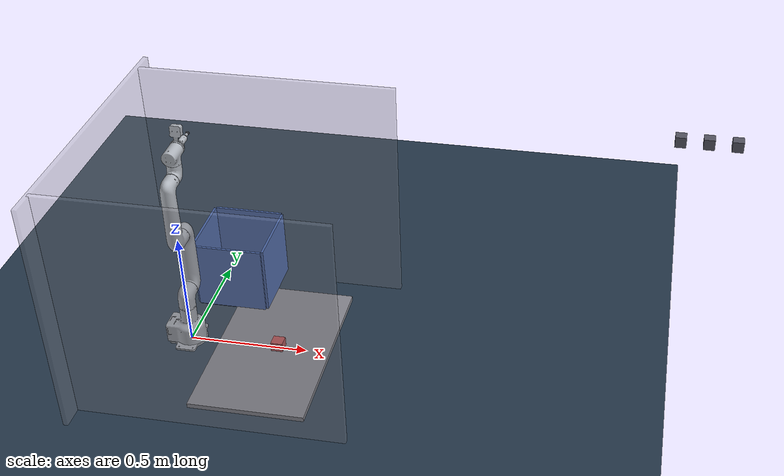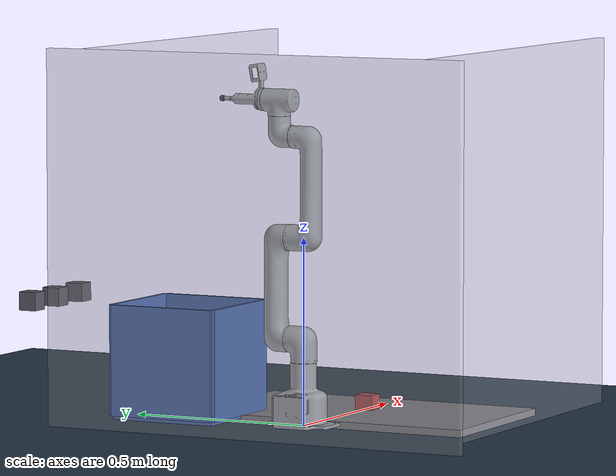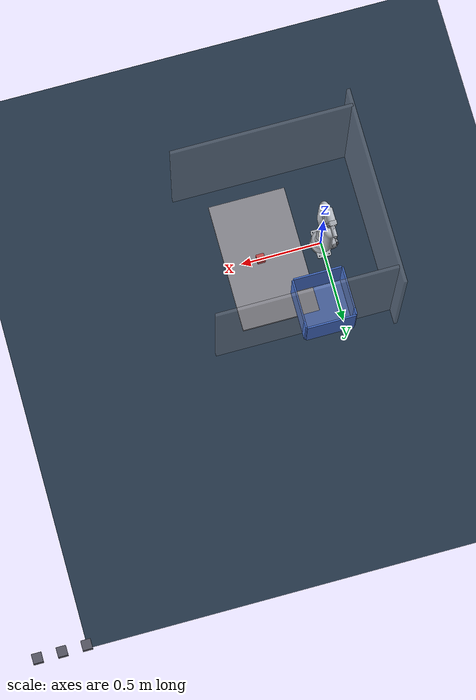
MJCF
<mujoco model="mycobot_diverse_v2">
  <compiler angle="radian" meshdir="meshes" autolimits="true" />
  <option timestep="0.002" gravity="0 0 -9.81" />
  <visual>
    <global offwidth="1280" offheight="960" />
    <headlight diffuse="0.6 0.6 0.6" ambient="0.4 0.4 0.4" />
    <map znear="0.01" />
  </visual>
  <asset>
    <texture name="grid" type="2d" builtin="checker" rgb1=".2 .3 .4" rgb2=".1 .15 .2" width="300" height="300" />
    <material name="grid" texture="grid" texrepeat="8 8" reflectance=".1" />
    <material name="metal" rgba="0.7 0.72 0.75 1" />
    <material name="box" rgba="0.27 0.43 0.78 1" />
    <material name="table" rgba="0.55 0.55 0.58 1" />
    <material name="o0" rgba="0.8 0.3 0.3 1" />
    <mesh name="base" file="base.stl" />
    <mesh name="link1" file="link1.stl" />
    <mesh name="link2" file="link2.stl" />
    <mesh name="link3" file="link3.stl" />
    <mesh name="link4" file="link4.stl" />
    <mesh name="link5" file="link5.stl" />
    <mesh name="link6" file="link6.stl" />
    <mesh name="camera_mount" file="camera_mount.stl" />
    <mesh name="suction_cup" file="suction_cup.stl" />
    <mesh name="hex_stub" vertex="0.001000 0.000000 0.001000 0.000500 0.000866 0.001000 -0.000500 0.000866 0.001000 -0.001000 0.000000 0.001000 -0.000500 -0.000866 0.001000 0.000500 -0.000866 0.001000 0.001000 0.000000 -0.001000 0.000500 0.000866 -0.001000 -0.000500 0.000866 -0.001000 -0.001000 0.000000 -0.001000 -0.000500 -0.000866 -0.001000 0.000500 -0.000866 -0.001000" />
    <mesh name="hex_r0_h0" vertex="0.018000 0.000000 0.012000 0.009000 0.015588 0.012000 -0.009000 0.015588 0.012000 -0.018000 0.000000 0.012000 -0.009000 -0.015588 0.012000 0.009000 -0.015588 0.012000 0.018000 0.000000 -0.012000 0.009000 0.015588 -0.012000 -0.009000 0.015588 -0.012000 -0.018000 0.000000 -0.012000 -0.009000 -0.015588 -0.012000 0.009000 -0.015588 -0.012000" />
    <mesh name="hex_r0_h1" vertex="0.018000 0.000000 0.021500 0.009000 0.015588 0.021500 -0.009000 0.015588 0.021500 -0.018000 0.000000 0.021500 -0.009000 -0.015588 0.021500 0.009000 -0.015588 0.021500 0.018000 0.000000 -0.021500 0.009000 0.015588 -0.021500 -0.009000 0.015588 -0.021500 -0.018000 0.000000 -0.021500 -0.009000 -0.015588 -0.021500 0.009000 -0.015588 -0.021500" />
    <mesh name="hex_r0_h2" vertex="0.018000 0.000000 0.031000 0.009000 0.015588 0.031000 -0.009000 0.015588 0.031000 -0.018000 0.000000 0.031000 -0.009000 -0.015588 0.031000 0.009000 -0.015588 0.031000 0.018000 0.000000 -0.031000 0.009000 0.015588 -0.031000 -0.009000 0.015588 -0.031000 -0.018000 0.000000 -0.031000 -0.009000 -0.015588 -0.031000 0.009000 -0.015588 -0.031000" />
    <mesh name="hex_r0_h3" vertex="0.018000 0.000000 0.040500 0.009000 0.015588 0.040500 -0.009000 0.015588 0.040500 -0.018000 0.000000 0.040500 -0.009000 -0.015588 0.040500 0.009000 -0.015588 0.040500 0.018000 0.000000 -0.040500 0.009000 0.015588 -0.040500 -0.009000 0.015588 -0.040500 -0.018000 0.000000 -0.040500 -0.009000 -0.015588 -0.040500 0.009000 -0.015588 -0.040500" />
    <mesh name="hex_r0_h4" vertex="0.018000 0.000000 0.050000 0.009000 0.015588 0.050000 -0.009000 0.015588 0.050000 -0.018000 0.000000 0.050000 -0.009000 -0.015588 0.050000 0.009000 -0.015588 0.050000 0.018000 0.000000 -0.050000 0.009000 0.015588 -0.050000 -0.009000 0.015588 -0.050000 -0.018000 0.000000 -0.050000 -0.009000 -0.015588 -0.050000 0.009000 -0.015588 -0.050000" />
    <mesh name="hex_r1_h0" vertex="0.023400 0.000000 0.012000 0.011700 0.020265 0.012000 -0.011700 0.020265 0.012000 -0.023400 0.000000 0.012000 -0.011700 -0.020265 0.012000 0.011700 -0.020265 0.012000 0.023400 0.000000 -0.012000 0.011700 0.020265 -0.012000 -0.011700 0.020265 -0.012000 -0.023400 0.000000 -0.012000 -0.011700 -0.020265 -0.012000 0.011700 -0.020265 -0.012000" />
    <mesh name="hex_r1_h1" vertex="0.023400 0.000000 0.021500 0.011700 0.020265 0.021500 -0.011700 0.020265 0.021500 -0.023400 0.000000 0.021500 -0.011700 -0.020265 0.021500 0.011700 -0.020265 0.021500 0.023400 0.000000 -0.021500 0.011700 0.020265 -0.021500 -0.011700 0.020265 -0.021500 -0.023400 0.000000 -0.021500 -0.011700 -0.020265 -0.021500 0.011700 -0.020265 -0.021500" />
    <mesh name="hex_r1_h2" vertex="0.023400 0.000000 0.031000 0.011700 0.020265 0.031000 -0.011700 0.020265 0.031000 -0.023400 0.000000 0.031000 -0.011700 -0.020265 0.031000 0.011700 -0.020265 0.031000 0.023400 0.000000 -0.031000 0.011700 0.020265 -0.031000 -0.011700 0.020265 -0.031000 -0.023400 0.000000 -0.031000 -0.011700 -0.020265 -0.031000 0.011700 -0.020265 -0.031000" />
    <mesh name="hex_r1_h3" vertex="0.023400 0.000000 0.040500 0.011700 0.020265 0.040500 -0.011700 0.020265 0.040500 -0.023400 0.000000 0.040500 -0.011700 -0.020265 0.040500 0.011700 -0.020265 0.040500 0.023400 0.000000 -0.040500 0.011700 0.020265 -0.040500 -0.011700 0.020265 -0.040500 -0.023400 0.000000 -0.040500 -0.011700 -0.020265 -0.040500 0.011700 -0.020265 -0.040500" />
    <mesh name="hex_r1_h4" vertex="0.023400 0.000000 0.050000 0.011700 0.020265 0.050000 -0.011700 0.020265 0.050000 -0.023400 0.000000 0.050000 -0.011700 -0.020265 0.050000 0.011700 -0.020265 0.050000 0.023400 0.000000 -0.050000 0.011700 0.020265 -0.050000 -0.011700 0.020265 -0.050000 -0.023400 0.000000 -0.050000 -0.011700 -0.020265 -0.050000 0.011700 -0.020265 -0.050000" />
    <mesh name="hex_r2_h0" vertex="0.028800 0.000000 0.012000 0.014400 0.024942 0.012000 -0.014400 0.024942 0.012000 -0.028800 0.000000 0.012000 -0.014400 -0.024942 0.012000 0.014400 -0.024942 0.012000 0.028800 0.000000 -0.012000 0.014400 0.024942 -0.012000 -0.014400 0.024942 -0.012000 -0.028800 0.000000 -0.012000 -0.014400 -0.024942 -0.012000 0.014400 -0.024942 -0.012000" />
    <mesh name="hex_r2_h1" vertex="0.028800 0.000000 0.021500 0.014400 0.024942 0.021500 -0.014400 0.024942 0.021500 -0.028800 0.000000 0.021500 -0.014400 -0.024942 0.021500 0.014400 -0.024942 0.021500 0.028800 0.000000 -0.021500 0.014400 0.024942 -0.021500 -0.014400 0.024942 -0.021500 -0.028800 0.000000 -0.021500 -0.014400 -0.024942 -0.021500 0.014400 -0.024942 -0.021500" />
    <mesh name="hex_r2_h2" vertex="0.028800 0.000000 0.031000 0.014400 0.024942 0.031000 -0.014400 0.024942 0.031000 -0.028800 0.000000 0.031000 -0.014400 -0.024942 0.031000 0.014400 -0.024942 0.031000 0.028800 0.000000 -0.031000 0.014400 0.024942 -0.031000 -0.014400 0.024942 -0.031000 -0.028800 0.000000 -0.031000 -0.014400 -0.024942 -0.031000 0.014400 -0.024942 -0.031000" />
    <mesh name="hex_r2_h3" vertex="0.028800 0.000000 0.040500 0.014400 0.024942 0.040500 -0.014400 0.024942 0.040500 -0.028800 0.000000 0.040500 -0.014400 -0.024942 0.040500 0.014400 -0.024942 0.040500 0.028800 0.000000 -0.040500 0.014400 0.024942 -0.040500 -0.014400 0.024942 -0.040500 -0.028800 0.000000 -0.040500 -0.014400 -0.024942 -0.040500 0.014400 -0.024942 -0.040500" />
    <mesh name="hex_r2_h4" vertex="0.028800 0.000000 0.050000 0.014400 0.024942 0.050000 -0.014400 0.024942 0.050000 -0.028800 0.000000 0.050000 -0.014400 -0.024942 0.050000 0.014400 -0.024942 0.050000 0.028800 0.000000 -0.050000 0.014400 0.024942 -0.050000 -0.014400 0.024942 -0.050000 -0.028800 0.000000 -0.050000 -0.014400 -0.024942 -0.050000 0.014400 -0.024942 -0.050000" />
    <mesh name="hex_r3_h0" vertex="0.034200 0.000000 0.012000 0.017100 0.029618 0.012000 -0.017100 0.029618 0.012000 -0.034200 0.000000 0.012000 -0.017100 -0.029618 0.012000 0.017100 -0.029618 0.012000 0.034200 0.000000 -0.012000 0.017100 0.029618 -0.012000 -0.017100 0.029618 -0.012000 -0.034200 0.000000 -0.012000 -0.017100 -0.029618 -0.012000 0.017100 -0.029618 -0.012000" />
    <mesh name="hex_r3_h1" vertex="0.034200 0.000000 0.021500 0.017100 0.029618 0.021500 -0.017100 0.029618 0.021500 -0.034200 0.000000 0.021500 -0.017100 -0.029618 0.021500 0.017100 -0.029618 0.021500 0.034200 0.000000 -0.021500 0.017100 0.029618 -0.021500 -0.017100 0.029618 -0.021500 -0.034200 0.000000 -0.021500 -0.017100 -0.029618 -0.021500 0.017100 -0.029618 -0.021500" />
    <mesh name="hex_r3_h2" vertex="0.034200 0.000000 0.031000 0.017100 0.029618 0.031000 -0.017100 0.029618 0.031000 -0.034200 0.000000 0.031000 -0.017100 -0.029618 0.031000 0.017100 -0.029618 0.031000 0.034200 0.000000 -0.031000 0.017100 0.029618 -0.031000 -0.017100 0.029618 -0.031000 -0.034200 0.000000 -0.031000 -0.017100 -0.029618 -0.031000 0.017100 -0.029618 -0.031000" />
    <mesh name="hex_r3_h3" vertex="0.034200 0.000000 0.040500 0.017100 0.029618 0.040500 -0.017100 0.029618 0.040500 -0.034200 0.000000 0.040500 -0.017100 -0.029618 0.040500 0.017100 -0.029618 0.040500 0.034200 0.000000 -0.040500 0.017100 0.029618 -0.040500 -0.017100 0.029618 -0.040500 -0.034200 0.000000 -0.040500 -0.017100 -0.029618 -0.040500 0.017100 -0.029618 -0.040500" />
    <mesh name="hex_r3_h4" vertex="0.034200 0.000000 0.050000 0.017100 0.029618 0.050000 -0.017100 0.029618 0.050000 -0.034200 0.000000 0.050000 -0.017100 -0.029618 0.050000 0.017100 -0.029618 0.050000 0.034200 0.000000 -0.050000 0.017100 0.029618 -0.050000 -0.017100 0.029618 -0.050000 -0.034200 0.000000 -0.050000 -0.017100 -0.029618 -0.050000 0.017100 -0.029618 -0.050000" />
    <mesh name="hex_r4_h0" vertex="0.039600 0.000000 0.012000 0.019800 0.034295 0.012000 -0.019800 0.034295 0.012000 -0.039600 0.000000 0.012000 -0.019800 -0.034295 0.012000 0.019800 -0.034295 0.012000 0.039600 0.000000 -0.012000 0.019800 0.034295 -0.012000 -0.019800 0.034295 -0.012000 -0.039600 0.000000 -0.012000 -0.019800 -0.034295 -0.012000 0.019800 -0.034295 -0.012000" />
    <mesh name="hex_r4_h1" vertex="0.039600 0.000000 0.021500 0.019800 0.034295 0.021500 -0.019800 0.034295 0.021500 -0.039600 0.000000 0.021500 -0.019800 -0.034295 0.021500 0.019800 -0.034295 0.021500 0.039600 0.000000 -0.021500 0.019800 0.034295 -0.021500 -0.019800 0.034295 -0.021500 -0.039600 0.000000 -0.021500 -0.019800 -0.034295 -0.021500 0.019800 -0.034295 -0.021500" />
    <mesh name="hex_r4_h2" vertex="0.039600 0.000000 0.031000 0.019800 0.034295 0.031000 -0.019800 0.034295 0.031000 -0.039600 0.000000 0.031000 -0.019800 -0.034295 0.031000 0.019800 -0.034295 0.031000 0.039600 0.000000 -0.031000 0.019800 0.034295 -0.031000 -0.019800 0.034295 -0.031000 -0.039600 0.000000 -0.031000 -0.019800 -0.034295 -0.031000 0.019800 -0.034295 -0.031000" />
    <mesh name="hex_r4_h3" vertex="0.039600 0.000000 0.040500 0.019800 0.034295 0.040500 -0.019800 0.034295 0.040500 -0.039600 0.000000 0.040500 -0.019800 -0.034295 0.040500 0.019800 -0.034295 0.040500 0.039600 0.000000 -0.040500 0.019800 0.034295 -0.040500 -0.019800 0.034295 -0.040500 -0.039600 0.000000 -0.040500 -0.019800 -0.034295 -0.040500 0.019800 -0.034295 -0.040500" />
    <mesh name="hex_r4_h4" vertex="0.039600 0.000000 0.050000 0.019800 0.034295 0.050000 -0.019800 0.034295 0.050000 -0.039600 0.000000 0.050000 -0.019800 -0.034295 0.050000 0.019800 -0.034295 0.050000 0.039600 0.000000 -0.050000 0.019800 0.034295 -0.050000 -0.019800 0.034295 -0.050000 -0.039600 0.000000 -0.050000 -0.019800 -0.034295 -0.050000 0.019800 -0.034295 -0.050000" />
    <mesh name="hex_r5_h0" vertex="0.045000 0.000000 0.012000 0.022500 0.038971 0.012000 -0.022500 0.038971 0.012000 -0.045000 0.000000 0.012000 -0.022500 -0.038971 0.012000 0.022500 -0.038971 0.012000 0.045000 0.000000 -0.012000 0.022500 0.038971 -0.012000 -0.022500 0.038971 -0.012000 -0.045000 0.000000 -0.012000 -0.022500 -0.038971 -0.012000 0.022500 -0.038971 -0.012000" />
    <mesh name="hex_r5_h1" vertex="0.045000 0.000000 0.021500 0.022500 0.038971 0.021500 -0.022500 0.038971 0.021500 -0.045000 0.000000 0.021500 -0.022500 -0.038971 0.021500 0.022500 -0.038971 0.021500 0.045000 0.000000 -0.021500 0.022500 0.038971 -0.021500 -0.022500 0.038971 -0.021500 -0.045000 0.000000 -0.021500 -0.022500 -0.038971 -0.021500 0.022500 -0.038971 -0.021500" />
    <mesh name="hex_r5_h2" vertex="0.045000 0.000000 0.031000 0.022500 0.038971 0.031000 -0.022500 0.038971 0.031000 -0.045000 0.000000 0.031000 -0.022500 -0.038971 0.031000 0.022500 -0.038971 0.031000 0.045000 0.000000 -0.031000 0.022500 0.038971 -0.031000 -0.022500 0.038971 -0.031000 -0.045000 0.000000 -0.031000 -0.022500 -0.038971 -0.031000 0.022500 -0.038971 -0.031000" />
    <mesh name="hex_r5_h3" vertex="0.045000 0.000000 0.040500 0.022500 0.038971 0.040500 -0.022500 0.038971 0.040500 -0.045000 0.000000 0.040500 -0.022500 -0.038971 0.040500 0.022500 -0.038971 0.040500 0.045000 0.000000 -0.040500 0.022500 0.038971 -0.040500 -0.022500 0.038971 -0.040500 -0.045000 0.000000 -0.040500 -0.022500 -0.038971 -0.040500 0.022500 -0.038971 -0.040500" />
    <mesh name="hex_r5_h4" vertex="0.045000 0.000000 0.050000 0.022500 0.038971 0.050000 -0.022500 0.038971 0.050000 -0.045000 0.000000 0.050000 -0.022500 -0.038971 0.050000 0.022500 -0.038971 0.050000 0.045000 0.000000 -0.050000 0.022500 0.038971 -0.050000 -0.022500 0.038971 -0.050000 -0.045000 0.000000 -0.050000 -0.022500 -0.038971 -0.050000 0.022500 -0.038971 -0.050000" />
    <material name="wall" rgba="0.62 0.62 0.66 0.35" />
  </asset>
  <worldbody>
    <light pos="0.3 0.1 1.5" dir="0 0 -1" diffuse="0.8 0.8 0.8" />
    <geom name="floor" type="plane" size="2 2 0.1" pos="0 0 -0.1200" material="grid" />
    <geom name="table" type="box" pos="0.360000 0.000000 -0.010000" size="0.240000 0.400000 0.010000" material="table" contype="0" conaffinity="0" />
    <geom name="wall_back" type="box" pos="-0.300000 0.000000 0.500000" size="0.010000 0.600000 0.500000" material="wall" contype="0" conaffinity="5" />
    <geom name="wall_ym" type="box" pos="0.250000 -0.500000 0.500000" size="0.550000 0.010000 0.500000" material="wall" contype="0" conaffinity="5" />
    <geom name="wall_yp" type="box" pos="0.250000 0.500000 0.500000" size="0.550000 0.010000 0.500000" material="wall" contype="0" conaffinity="5" />
    <geom name="table_top" type="plane" size="1.5 1.5 0.05" pos="0 0 0" rgba="0 0 0 0" group="3" contype="1" conaffinity="1" />
    <geom name="box_floor" type="box" pos="0.1000 0.4000 -0.0050" size="0.1500 0.1500 0.0050" material="box" />
    <geom name="box_xm" type="box" pos="-0.0550 0.4000 0.1500" size="0.0050 0.1500 0.1500" material="box" />
    <geom name="box_xp" type="box" pos="0.2550 0.4000 0.1500" size="0.0050 0.1500 0.1500" material="box" />
    <geom name="box_ym" type="box" pos="0.1000 0.2450 0.1500" size="0.1500 0.0050 0.1500" material="box" />
    <geom name="box_yp" type="box" pos="0.1000 0.5550 0.1500" size="0.1500 0.0050 0.1500" material="box" />
    <camera name="iso" pos="1.05 -0.55 0.78" xyaxes="0.45 0.89 0 -0.5 0.25 0.83" />
    <camera name="front" pos="0.38 -0.85 0.45" xyaxes="1 0 0 0 0.45 0.89" />
    <camera name="top" pos="0.38 0.0 0.9" xyaxes="1 0 0 0 1 0" />
    <camera name="fixed_d435" pos="0.660 0.000 0.600" xyaxes="0.0000 1.0000 -0.0000 -0.8976 0.0000 0.4409" fovy="42.0" />
    <body name="base_link" pos="0 0 0">
      <body name="base" pos="0.000000 0.000000 0.000000" quat="1.000000 0.000000 0.000000 0.000000">
        <inertial pos="-0.013400 0.000010 0.065840" mass="3.422500" fullinertia="1.129e-02 1.123e-02 9.902e-03 5.521e-08 -1.427e-04 -2.052e-07" />
        <geom type="mesh" mesh="base" material="metal" contype="0" conaffinity="0" />
        <body name="link1" pos="0.000000 0.000000 0.229340" quat="1.000000 0.000000 0.000000 0.000000">
          <joint name="joint1" type="hinge" axis="0.0000 0.0000 1.0000" range="-3.1416 3.1416" damping="1.0" armature="0.15" />
          <inertial pos="0.000000 0.007560 -0.014550" mass="0.543400" fullinertia="5.669e-04 5.118e-04 4.049e-04 -3.760e-12 9.896e-13 -4.414e-05" />
          <geom type="mesh" mesh="link1" material="metal" contype="0" conaffinity="0" />
          <body name="link2" pos="0.000000 0.000000 0.000000" quat="-0.500023 -0.499975 0.500025 -0.499977">
            <joint name="joint2" type="hinge" axis="0.0000 0.0000 -1.0000" range="-3.1416 3.1416" damping="1.0" armature="0.15" />
            <inertial pos="0.134440 0.000020 -0.075330" mass="1.812500" fullinertia="1.229e-03 1.587e-02 1.590e-02 -1.272e-06 -2.471e-08 -9.612e-09" />
            <geom type="mesh" mesh="link2" material="metal" contype="0" conaffinity="0" />
            <body name="link3" pos="0.270000 0.000000 0.000000" quat="1.000000 0.000000 0.000000 0.000000">
              <joint name="joint3" type="hinge" axis="0.0000 0.0000 -1.0000" range="-2.6100 2.6180" damping="1.0" armature="0.15" />
              <inertial pos="0.122480 -0.000230 0.001000" mass="2.265100" fullinertia="2.065e-03 1.967e-02 1.904e-02 -1.733e-06 -3.722e-04 -9.829e-08" />
              <geom type="mesh" mesh="link3" material="metal" contype="0" conaffinity="0" />
              <body name="link4" pos="0.267000 0.000000 -0.074500" quat="0.707105 0.000000 0.000000 0.707108">
                <joint name="joint4" type="hinge" axis="0.0000 0.0000 -1.0000" range="-2.9670 2.9670" damping="1.0" armature="0.15" />
                <inertial pos="0.000000 -0.014910 0.009100" mass="0.344700" fullinertia="2.681e-04 1.882e-04 2.438e-04 -2.279e-08 4.082e-09 -2.695e-05" />
                <geom type="mesh" mesh="link4" material="metal" contype="0" conaffinity="0" />
                <body name="link5" pos="0.000000 -0.095000 0.002000" quat="0.500048 0.500000 -0.500000 0.499952">
                  <joint name="joint5" type="hinge" axis="0.0000 0.0000 1.0000" range="-2.9300 2.9321" damping="1.0" armature="0.15" />
                  <inertial pos="0.000780 0.000000 -0.006540" mass="0.420400" fullinertia="2.502e-04 3.887e-04 3.526e-04 1.986e-12 -2.156e-06 -3.526e-12" />
                  <geom type="mesh" mesh="link5" material="metal" contype="0" conaffinity="0" />
                  <body name="link6" pos="-0.054000 0.000000 0.000000" quat="0.707141 -0.707073 0.000000 0.000000">
                    <joint name="joint6" type="hinge" axis="-1.0000 0.0000 0.0000" range="-3.0300 3.0368" damping="1.0" armature="0.15" />
                    <inertial pos="0.005430 0.000000 0.000000" mass="0.037600" fullinertia="1.680e-05 8.708e-06 8.709e-06 -1.013e-13 8.044e-10 6.140e-13" />
                    <geom type="mesh" mesh="link6" material="metal" contype="0" conaffinity="0" />
                    <body name="camera_mount" pos="-0.003000 -0.003000 0.000000" quat="0.000003 -0.707105 0.000003 0.707108">
                      <inertial pos="0.000000 0.000000 0.000000" mass="0.050000" fullinertia="3.000e-05 3.000e-05 3.000e-05 0.000e+00 0.000e+00 0.000e+00" />
                      <geom type="mesh" mesh="camera_mount" material="metal" contype="0" conaffinity="0" />
                    </body>
                    <body name="suction_cup" pos="0.000000 0.000000 0.000000" quat="0.707105 0.000000 0.707108 0.000000">
                      <inertial pos="0.000000 0.000000 -0.034280" mass="0.153700" fullinertia="1.216e-04 1.216e-04 3.597e-05 2.032e-13 -3.219e-13 3.146e-10" />
                      <geom type="mesh" mesh="suction_cup" material="metal" contype="0" conaffinity="0" />
                      <body name="tcp" pos="0.000000 0.000000 -0.115000" quat="-0.000004 1.000000 0.000000 0.000000">
                        <inertial pos="0.000000 0.000000 0.000000" mass="0.001000" fullinertia="1.000e-06 1.000e-06 1.000e-06 0.000e+00 0.000e+00 0.000e+00" />
                        <site name="tcp" size="0.005" rgba="1 0 0 1" />
                        <site name="tip_rf" size="0.004" rgba="0 1 0 0.6" />
                        <geom name="cup_tip" type="sphere" size="0.008" rgba="0.25 0.25 0.28 1" />
                        <camera name="wrist_d405" pos="0.012680 0.063243 -0.098242" quat="-0.003636 0.032818 0.996380 0.078335" fovy="58.0" />
                      </body>
                      <body name="eef" pos="0.000000 0.000000 -0.105000" quat="-0.000004 1.000000 0.000000 0.000000">
                        <inertial pos="0.000000 0.000000 0.000000" mass="0.001000" fullinertia="1.000e-06 1.000e-06 1.000e-06 0.000e+00 0.000e+00 0.000e+00" />
                      </body>
                      <geom name="prox_suction_cup" type="capsule" fromto="0.000000 0.000000 0.000000 0.000000 0.000000 -0.100000" size="0.0300" mass="0" group="3" rgba="0.9 0.2 0.2 0.12" contype="4" conaffinity="0" />
                    </body>
                  </body>
                  <geom name="prox_link5" type="capsule" fromto="0.000000 0.000000 0.000000 -0.054000 0.000000 0.000000" size="0.0420" mass="0" group="3" rgba="0.9 0.2 0.2 0.12" contype="4" conaffinity="0" />
                </body>
                <geom name="prox_link4" type="capsule" fromto="0.000000 0.000000 0.000000 0.000000 -0.095000 0.000000" size="0.0450" mass="0" group="3" rgba="0.9 0.2 0.2 0.12" contype="4" conaffinity="0" />
              </body>
              <geom name="prox_link3" type="capsule" fromto="0.000000 0.000000 0.000000 0.267000 0.000000 -0.074500" size="0.0550" mass="0" group="3" rgba="0.9 0.2 0.2 0.12" contype="4" conaffinity="0" />
            </body>
            <geom name="prox_link2" type="capsule" fromto="0.000000 0.000000 0.000000 0.270000 0.000000 0.000000" size="0.0600" mass="0" group="3" rgba="0.9 0.2 0.2 0.12" contype="4" conaffinity="0" />
          </body>
          <geom name="prox_link1" type="capsule" fromto="0.000000 0.000000 -0.060000 0.000000 0.000000 0.030000" size="0.0700" mass="0" group="3" rgba="0.9 0.2 0.2 0.12" contype="4" conaffinity="0" />
        </body>
      </body>
    </body>
    <body name="object0" pos="0.38 0 0.0" quat="1 0 0 0">
      <freejoint name="obj0_free" />
      <inertial pos="0.000000 0.000000 0.020000" mass="0.05" diaginertia="0.000010 0.000010 0.000010" />
      <geom name="g_box" type="box" size="0.025000 0.025000 0.020000" pos="0.000000 0.000000 0.020000" material="o0" mass="0" />
      <geom name="g_cyl" type="cylinder" size="0.001000 0.001000" pos="0.000000 0.000000 0.020000" material="o0" mass="0" />
      <geom name="g_hex" type="mesh" mesh="hex_stub" pos="0.000000 0.000000 0.020000" material="o0" mass="0" />
    </body>
    <body name="dist0" pos="2.000000 2.000000 0.000000" quat="1 0 0 0">
      <freejoint name="dist0_free" />
      <inertial pos="0.000000 0.000000 0.030000" mass="0.3" diaginertia="0.000100 0.000100 0.000100" />
      <geom name="d0_box" type="box" size="0.030000 0.030000 0.030000" pos="0.000000 0.000000 0.030000" rgba="0.35 0.35 0.40 1" mass="0" contype="1" conaffinity="5" />
      <geom name="d0_cyl" type="cylinder" size="0.001000 0.001000" pos="0.000000 0.000000 0.030000" rgba="0.35 0.35 0.40 1" mass="0" contype="1" conaffinity="5" />
    </body>
    <body name="dist1" pos="2.150000 2.000000 0.000000" quat="1 0 0 0">
      <freejoint name="dist1_free" />
      <inertial pos="0.000000 0.000000 0.030000" mass="0.3" diaginertia="0.000100 0.000100 0.000100" />
      <geom name="d1_box" type="box" size="0.030000 0.030000 0.030000" pos="0.000000 0.000000 0.030000" rgba="0.35 0.35 0.40 1" mass="0" contype="1" conaffinity="5" />
      <geom name="d1_cyl" type="cylinder" size="0.001000 0.001000" pos="0.000000 0.000000 0.030000" rgba="0.35 0.35 0.40 1" mass="0" contype="1" conaffinity="5" />
    </body>
    <body name="dist2" pos="2.300000 2.000000 0.000000" quat="1 0 0 0">
      <freejoint name="dist2_free" />
      <inertial pos="0.000000 0.000000 0.030000" mass="0.3" diaginertia="0.000100 0.000100 0.000100" />
      <geom name="d2_box" type="box" size="0.030000 0.030000 0.030000" pos="0.000000 0.000000 0.030000" rgba="0.35 0.35 0.40 1" mass="0" contype="1" conaffinity="5" />
      <geom name="d2_cyl" type="cylinder" size="0.001000 0.001000" pos="0.000000 0.000000 0.030000" rgba="0.35 0.35 0.40 1" mass="0" contype="1" conaffinity="5" />
    </body>
  </worldbody>
  <equality>
    <weld name="suction_object0" body1="tcp" body2="object0" active="false" solref="0.005 1" />
  </equality>
  <actuator>
    <motor name="act_joint1" joint="joint1" ctrlrange="-100 100" />
    <motor name="act_joint2" joint="joint2" ctrlrange="-100 100" />
    <motor name="act_joint3" joint="joint3" ctrlrange="-100 100" />
    <motor name="act_joint4" joint="joint4" ctrlrange="-100 100" />
    <motor name="act_joint5" joint="joint5" ctrlrange="-100 100" />
    <motor name="act_joint6" joint="joint6" ctrlrange="-100 100" />
  </actuator>
  <sensor>
    <rangefinder name="tip_range" site="tip_rf" />
  </sensor>
</mujoco>
